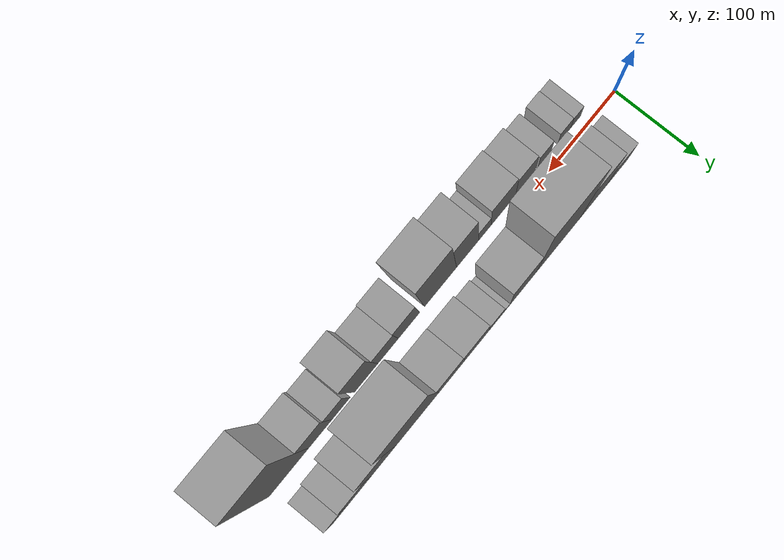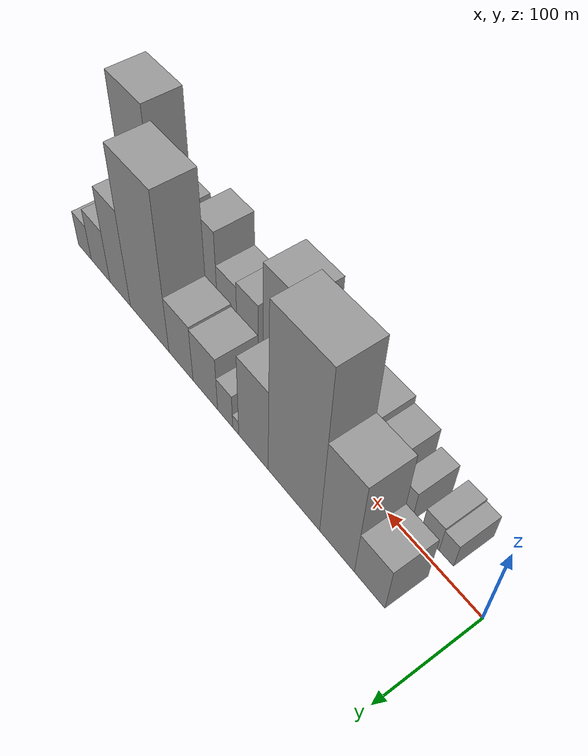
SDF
<sdf version="1.6">
 <world name="default">
  <scene>
   <sky><clouds><speed>12</speed></clouds></sky>
   <ambient>0.4 0.4 0.4 1</ambient>
   <background>0.7 0.7 0.7 1</background>
   <shadows>1</shadows>
  </scene>
  <gravity>0 0 -9.8066</gravity>
  <magnetic_field>6e-06 2.3e-05 -4.2e-05</magnetic_field>
  <physics default="0" name="default_physics" type="ode">
   <ode>
    <solver>
     <type>quick</type>
     <iters>10</iters>
     <sor>1.0</sor>
     <use_dynamic_moi_rescaling>0</use_dynamic_moi_rescaling>
    </solver>
    <constraints>
     <cfm>0</cfm>
     <erp>0.2</erp>
     <contact_max_correcting_vel>100</contact_max_correcting_vel>
     <contact_surface_layer>0.001</contact_surface_layer>
    </constraints>
   </ode>
   <max_step_size>0.004</max_step_size>
   <real_time_factor>1</real_time_factor>
   <real_time_update_rate>250</real_time_update_rate>
  </physics>
  <light name="sun" type="directional">
   <pose>0 0 10 0 0 0</pose>
   <diffuse>0.8 0.8 0.8 1</diffuse>
   <specular>0.2 0.2 0.2 1</specular>
   <attenuation>
    <range>1000</range>
    <constant>0.9</constant>
    <linear>0.01</linear>
    <quadratic>0.001</quadratic>
   </attenuation>
   <direction>-0.5 0.1 -0.9</direction>
  </light>
  <model name="building_1">
   <static>1</static>
   <pose>61.6390 30.0000 0 0.000000 0.000000 1.570796</pose>
   <link name="link">
    <pose>0 0 28.50 0 0 0</pose>
    <collision name="collision"><geometry><box><size>40.0000 33.2779 57.0000</size></box></geometry></collision>
    <visual name="visual">
     <cast_shadows>0</cast_shadows>
     <geometry><box><size>40.0000 33.2779 57.0000</size></box></geometry>
     <material>
      <script>
       <uri>model://grey_wall/materials/scripts</uri>
       <uri>model://grey_wall/materials/textures</uri>
       <name>vrc/grey_wall</name>
      </script>
     </material>
    </visual>
   </link>
  </model>
  <model name="building_2">
   <static>1</static>
   <pose>98.2500 30.0000 0 0.000000 0.000000 1.570796</pose>
   <link name="link">
    <pose>0 0 60.00 0 0 0</pose>
    <collision name="collision"><geometry><box><size>40.0000 39.9442 120.0000</size></box></geometry></collision>
    <visual name="visual">
     <cast_shadows>0</cast_shadows>
     <geometry><box><size>40.0000 39.9442 120.0000</size></box></geometry>
     <material>
      <script>
       <uri>model://grey_wall/materials/scripts</uri>
       <uri>model://grey_wall/materials/textures</uri>
       <name>vrc/grey_wall</name>
      </script>
     </material>
    </visual>
   </link>
  </model>
  <model name="building_3">
   <static>1</static>
   <pose>150.0507 30.0000 0 0.000000 0.000000 1.570796</pose>
   <link name="link">
    <pose>0 0 100.50 0 0 0</pose>
    <collision name="collision"><geometry><box><size>40.0000 63.6570 201.0000</size></box></geometry></collision>
    <visual name="visual">
     <cast_shadows>0</cast_shadows>
     <geometry><box><size>40.0000 63.6570 201.0000</size></box></geometry>
     <material>
      <script>
       <uri>model://grey_wall/materials/scripts</uri>
       <uri>model://grey_wall/materials/textures</uri>
       <name>vrc/grey_wall</name>
      </script>
     </material>
    </visual>
   </link>
  </model>
  <model name="building_4">
   <static>1</static>
   <pose>201.3103 30.0000 0 0.000000 0.000000 1.570796</pose>
   <link name="link">
    <pose>0 0 51.00 0 0 0</pose>
    <collision name="collision"><geometry><box><size>40.0000 38.8623 102.0000</size></box></geometry></collision>
    <visual name="visual">
     <cast_shadows>0</cast_shadows>
     <geometry><box><size>40.0000 38.8623 102.0000</size></box></geometry>
     <material>
      <script>
       <uri>model://grey_wall/materials/scripts</uri>
       <uri>model://grey_wall/materials/textures</uri>
       <name>vrc/grey_wall</name>
      </script>
     </material>
    </visual>
   </link>
  </model>
  <model name="building_5">
   <static>1</static>
   <pose>224.8740 30.0000 0 0.000000 0.000000 1.570796</pose>
   <link name="link">
    <pose>0 0 9.00 0 0 0</pose>
    <collision name="collision"><geometry><box><size>40.0000 8.2650 18.0000</size></box></geometry></collision>
    <visual name="visual">
     <cast_shadows>0</cast_shadows>
     <geometry><box><size>40.0000 8.2650 18.0000</size></box></geometry>
     <material>
      <script>
       <uri>model://grey_wall/materials/scripts</uri>
       <uri>model://grey_wall/materials/textures</uri>
       <name>vrc/grey_wall</name>
      </script>
     </material>
    </visual>
   </link>
  </model>
  <model name="building_6">
   <static>1</static>
   <pose>239.5256 30.0000 0 0.000000 0.000000 1.570796</pose>
   <link name="link">
    <pose>0 0 21.00 0 0 0</pose>
    <collision name="collision"><geometry><box><size>40.0000 21.0382 42.0000</size></box></geometry></collision>
    <visual name="visual">
     <cast_shadows>0</cast_shadows>
     <geometry><box><size>40.0000 21.0382 42.0000</size></box></geometry>
     <material>
      <script>
       <uri>model://grey_wall/materials/scripts</uri>
       <uri>model://grey_wall/materials/textures</uri>
       <name>vrc/grey_wall</name>
      </script>
     </material>
    </visual>
   </link>
  </model>
  <model name="building_7">
   <static>1</static>
   <pose>267.7316 30.0000 0 0.000000 0.000000 1.570796</pose>
   <link name="link">
    <pose>0 0 33.00 0 0 0</pose>
    <collision name="collision"><geometry><box><size>40.0000 35.3738 66.0000</size></box></geometry></collision>
    <visual name="visual">
     <cast_shadows>0</cast_shadows>
     <geometry><box><size>40.0000 35.3738 66.0000</size></box></geometry>
     <material>
      <script>
       <uri>model://grey_wall/materials/scripts</uri>
       <uri>model://grey_wall/materials/textures</uri>
       <name>vrc/grey_wall</name>
      </script>
     </material>
    </visual>
   </link>
  </model>
  <model name="building_8">
   <static>1</static>
   <pose>303.6206 30.0000 0 0.000000 0.000000 1.570796</pose>
   <link name="link">
    <pose>0 0 34.50 0 0 0</pose>
    <collision name="collision"><geometry><box><size>40.0000 36.4042 69.0000</size></box></geometry></collision>
    <visual name="visual">
     <cast_shadows>0</cast_shadows>
     <geometry><box><size>40.0000 36.4042 69.0000</size></box></geometry>
     <material>
      <script>
       <uri>model://grey_wall/materials/scripts</uri>
       <uri>model://grey_wall/materials/textures</uri>
       <name>vrc/grey_wall</name>
      </script>
     </material>
    </visual>
   </link>
  </model>
  <model name="building_9">
   <static>1</static>
   <pose>352.7434 30.0000 0 0.000000 0.000000 1.570796</pose>
   <link name="link">
    <pose>0 0 91.50 0 0 0</pose>
    <collision name="collision"><geometry><box><size>40.0000 61.8414 183.0000</size></box></geometry></collision>
    <visual name="visual">
     <cast_shadows>0</cast_shadows>
     <geometry><box><size>40.0000 61.8414 183.0000</size></box></geometry>
     <material>
      <script>
       <uri>model://grey_wall/materials/scripts</uri>
       <uri>model://grey_wall/materials/textures</uri>
       <name>vrc/grey_wall</name>
      </script>
     </material>
    </visual>
   </link>
  </model>
  <model name="building_10">
   <static>1</static>
   <pose>401.1402 30.0000 0 0.000000 0.000000 1.570796</pose>
   <link name="link">
    <pose>0 0 57.00 0 0 0</pose>
    <collision name="collision"><geometry><box><size>40.0000 34.9523 114.0000</size></box></geometry></collision>
    <visual name="visual">
     <cast_shadows>0</cast_shadows>
     <geometry><box><size>40.0000 34.9523 114.0000</size></box></geometry>
     <material>
      <script>
       <uri>model://grey_wall/materials/scripts</uri>
       <uri>model://grey_wall/materials/textures</uri>
       <name>vrc/grey_wall</name>
      </script>
     </material>
    </visual>
   </link>
  </model>
  <model name="building_11">
   <static>1</static>
   <pose>435.0475 30.0000 0 0.000000 0.000000 1.570796</pose>
   <link name="link">
    <pose>0 0 31.50 0 0 0</pose>
    <collision name="collision"><geometry><box><size>40.0000 32.8624 63.0000</size></box></geometry></collision>
    <visual name="visual">
     <cast_shadows>0</cast_shadows>
     <geometry><box><size>40.0000 32.8624 63.0000</size></box></geometry>
     <material>
      <script>
       <uri>model://grey_wall/materials/scripts</uri>
       <uri>model://grey_wall/materials/textures</uri>
       <name>vrc/grey_wall</name>
      </script>
     </material>
    </visual>
   </link>
  </model>
  <model name="building_12">
   <static>1</static>
   <pose>463.2042 30.0000 0 0.000000 0.000000 1.570796</pose>
   <link name="link">
    <pose>0 0 21.00 0 0 0</pose>
    <collision name="collision"><geometry><box><size>40.0000 23.4510 42.0000</size></box></geometry></collision>
    <visual name="visual">
     <cast_shadows>0</cast_shadows>
     <geometry><box><size>40.0000 23.4510 42.0000</size></box></geometry>
     <material>
      <script>
       <uri>model://grey_wall/materials/scripts</uri>
       <uri>model://grey_wall/materials/textures</uri>
       <name>vrc/grey_wall</name>
      </script>
     </material>
    </visual>
   </link>
  </model>
  <model name="building_13">
   <static>1</static>
   <pose>47.6130 -30.0000 0 0.000000 0.000000 1.570796</pose>
   <link name="link">
    <pose>0 0 15.00 0 0 0</pose>
    <collision name="collision"><geometry><box><size>40.0000 15.2260 30.0000</size></box></geometry></collision>
    <visual name="visual">
     <cast_shadows>0</cast_shadows>
     <geometry><box><size>40.0000 15.2260 30.0000</size></box></geometry>
     <material>
      <script>
       <uri>model://grey_wall/materials/scripts</uri>
       <uri>model://grey_wall/materials/textures</uri>
       <name>vrc/grey_wall</name>
      </script>
     </material>
    </visual>
   </link>
  </model>
  <model name="building_14">
   <static>1</static>
   <pose>64.8836 -30.0000 0 0.000000 0.000000 1.570796</pose>
   <link name="link">
    <pose>0 0 16.50 0 0 0</pose>
    <collision name="collision"><geometry><box><size>40.0000 19.3153 33.0000</size></box></geometry></collision>
    <visual name="visual">
     <cast_shadows>0</cast_shadows>
     <geometry><box><size>40.0000 19.3153 33.0000</size></box></geometry>
     <material>
      <script>
       <uri>model://grey_wall/materials/scripts</uri>
       <uri>model://grey_wall/materials/textures</uri>
       <name>vrc/grey_wall</name>
      </script>
     </material>
    </visual>
   </link>
  </model>
  <model name="building_15">
   <static>1</static>
   <pose>94.4927 -30.0000 0 0.000000 0.000000 1.570796</pose>
   <link name="link">
    <pose>0 0 19.50 0 0 0</pose>
    <collision name="collision"><geometry><box><size>40.0000 19.9028 39.0000</size></box></geometry></collision>
    <visual name="visual">
     <cast_shadows>0</cast_shadows>
     <geometry><box><size>40.0000 19.9028 39.0000</size></box></geometry>
     <material>
      <script>
       <uri>model://grey_wall/materials/scripts</uri>
       <uri>model://grey_wall/materials/textures</uri>
       <name>vrc/grey_wall</name>
      </script>
     </material>
    </visual>
   </link>
  </model>
  <model name="building_16">
   <static>1</static>
   <pose>122.7607 -30.0000 0 0.000000 0.000000 1.570796</pose>
   <link name="link">
    <pose>0 0 28.50 0 0 0</pose>
    <collision name="collision"><geometry><box><size>40.0000 28.6332 57.0000</size></box></geometry></collision>
    <visual name="visual">
     <cast_shadows>0</cast_shadows>
     <geometry><box><size>40.0000 28.6332 57.0000</size></box></geometry>
     <material>
      <script>
       <uri>model://grey_wall/materials/scripts</uri>
       <uri>model://grey_wall/materials/textures</uri>
       <name>vrc/grey_wall</name>
      </script>
     </material>
    </visual>
   </link>
  </model>
  <model name="building_17">
   <static>1</static>
   <pose>155.3288 -30.0000 0 0.000000 0.000000 1.570796</pose>
   <link name="link">
    <pose>0 0 33.00 0 0 0</pose>
    <collision name="collision"><geometry><box><size>40.0000 36.5030 66.0000</size></box></geometry></collision>
    <visual name="visual">
     <cast_shadows>0</cast_shadows>
     <geometry><box><size>40.0000 36.5030 66.0000</size></box></geometry>
     <material>
      <script>
       <uri>model://grey_wall/materials/scripts</uri>
       <uri>model://grey_wall/materials/textures</uri>
       <name>vrc/grey_wall</name>
      </script>
     </material>
    </visual>
   </link>
  </model>
  <model name="building_18">
   <static>1</static>
   <pose>182.5957 -30.0000 0 0.000000 0.000000 1.570796</pose>
   <link name="link">
    <pose>0 0 18.00 0 0 0</pose>
    <collision name="collision"><geometry><box><size>40.0000 18.0307 36.0000</size></box></geometry></collision>
    <visual name="visual">
     <cast_shadows>0</cast_shadows>
     <geometry><box><size>40.0000 18.0307 36.0000</size></box></geometry>
     <material>
      <script>
       <uri>model://grey_wall/materials/scripts</uri>
       <uri>model://grey_wall/materials/textures</uri>
       <name>vrc/grey_wall</name>
      </script>
     </material>
    </visual>
   </link>
  </model>
  <model name="building_19">
   <static>1</static>
   <pose>207.8779 -30.0000 0 0.000000 0.000000 1.570796</pose>
   <link name="link">
    <pose>0 0 46.50 0 0 0</pose>
    <collision name="collision"><geometry><box><size>40.0000 32.5338 93.0000</size></box></geometry></collision>
    <visual name="visual">
     <cast_shadows>0</cast_shadows>
     <geometry><box><size>40.0000 32.5338 93.0000</size></box></geometry>
     <material>
      <script>
       <uri>model://grey_wall/materials/scripts</uri>
       <uri>model://grey_wall/materials/textures</uri>
       <name>vrc/grey_wall</name>
      </script>
     </material>
    </visual>
   </link>
  </model>
  <model name="building_20">
   <static>1</static>
   <pose>247.3973 -30.0000 0 0.000000 0.000000 1.570796</pose>
   <link name="link">
    <pose>0 0 58.50 0 0 0</pose>
    <collision name="collision"><geometry><box><size>40.0000 46.5050 117.0000</size></box></geometry></collision>
    <visual name="visual">
     <cast_shadows>0</cast_shadows>
     <geometry><box><size>40.0000 46.5050 117.0000</size></box></geometry>
     <material>
      <script>
       <uri>model://grey_wall/materials/scripts</uri>
       <uri>model://grey_wall/materials/textures</uri>
       <name>vrc/grey_wall</name>
      </script>
     </material>
    </visual>
   </link>
  </model>
  <model name="building_21">
   <static>1</static>
   <pose>292.9589 -30.0000 0 0.000000 0.000000 1.570796</pose>
   <link name="link">
    <pose>0 0 30.00 0 0 0</pose>
    <collision name="collision"><geometry><box><size>40.0000 30.6181 60.0000</size></box></geometry></collision>
    <visual name="visual">
     <cast_shadows>0</cast_shadows>
     <geometry><box><size>40.0000 30.6181 60.0000</size></box></geometry>
     <material>
      <script>
       <uri>model://grey_wall/materials/scripts</uri>
       <uri>model://grey_wall/materials/textures</uri>
       <name>vrc/grey_wall</name>
      </script>
     </material>
    </visual>
   </link>
  </model>
  <model name="building_22">
   <static>1</static>
   <pose>322.9214 -30.0000 0 0.000000 0.000000 1.570796</pose>
   <link name="link">
    <pose>0 0 27.00 0 0 0</pose>
    <collision name="collision"><geometry><box><size>40.0000 29.3069 54.0000</size></box></geometry></collision>
    <visual name="visual">
     <cast_shadows>0</cast_shadows>
     <geometry><box><size>40.0000 29.3069 54.0000</size></box></geometry>
     <material>
      <script>
       <uri>model://grey_wall/materials/scripts</uri>
       <uri>model://grey_wall/materials/textures</uri>
       <name>vrc/grey_wall</name>
      </script>
     </material>
    </visual>
   </link>
  </model>
  <model name="building_23">
   <static>1</static>
   <pose>354.3946 -30.0000 0 0.000000 0.000000 1.570796</pose>
   <link name="link">
    <pose>0 0 46.50 0 0 0</pose>
    <collision name="collision"><geometry><box><size>40.0000 33.6395 93.0000</size></box></geometry></collision>
    <visual name="visual">
     <cast_shadows>0</cast_shadows>
     <geometry><box><size>40.0000 33.6395 93.0000</size></box></geometry>
     <material>
      <script>
       <uri>model://grey_wall/materials/scripts</uri>
       <uri>model://grey_wall/materials/textures</uri>
       <name>vrc/grey_wall</name>
      </script>
     </material>
    </visual>
   </link>
  </model>
  <model name="building_24">
   <static>1</static>
   <pose>389.9804 -30.0000 0 0.000000 0.000000 1.570796</pose>
   <link name="link">
    <pose>0 0 25.50 0 0 0</pose>
    <collision name="collision"><geometry><box><size>40.0000 25.5323 51.0000</size></box></geometry></collision>
    <visual name="visual">
     <cast_shadows>0</cast_shadows>
     <geometry><box><size>40.0000 25.5323 51.0000</size></box></geometry>
     <material>
      <script>
       <uri>model://grey_wall/materials/scripts</uri>
       <uri>model://grey_wall/materials/textures</uri>
       <name>vrc/grey_wall</name>
      </script>
     </material>
    </visual>
   </link>
  </model>
  <model name="building_25">
   <static>1</static>
   <pose>419.1519 -30.0000 0 0.000000 0.000000 1.570796</pose>
   <link name="link">
    <pose>0 0 31.50 0 0 0</pose>
    <collision name="collision"><geometry><box><size>40.0000 32.8106 63.0000</size></box></geometry></collision>
    <visual name="visual">
     <cast_shadows>0</cast_shadows>
     <geometry><box><size>40.0000 32.8106 63.0000</size></box></geometry>
     <material>
      <script>
       <uri>model://grey_wall/materials/scripts</uri>
       <uri>model://grey_wall/materials/textures</uri>
       <name>vrc/grey_wall</name>
      </script>
     </material>
    </visual>
   </link>
  </model>
  <model name="building_26">
   <static>1</static>
   <pose>463.6049 -30.0000 0 0.000000 0.000000 1.570796</pose>
   <link name="link">
    <pose>0 0 78.00 0 0 0</pose>
    <collision name="collision"><geometry><box><size>40.0000 56.0953 156.0000</size></box></geometry></collision>
    <visual name="visual">
     <cast_shadows>0</cast_shadows>
     <geometry><box><size>40.0000 56.0953 156.0000</size></box></geometry>
     <material>
      <script>
       <uri>model://grey_wall/materials/scripts</uri>
       <uri>model://grey_wall/materials/textures</uri>
       <name>vrc/grey_wall</name>
      </script>
     </material>
    </visual>
   </link>
  </model>
 </world>
</sdf>
